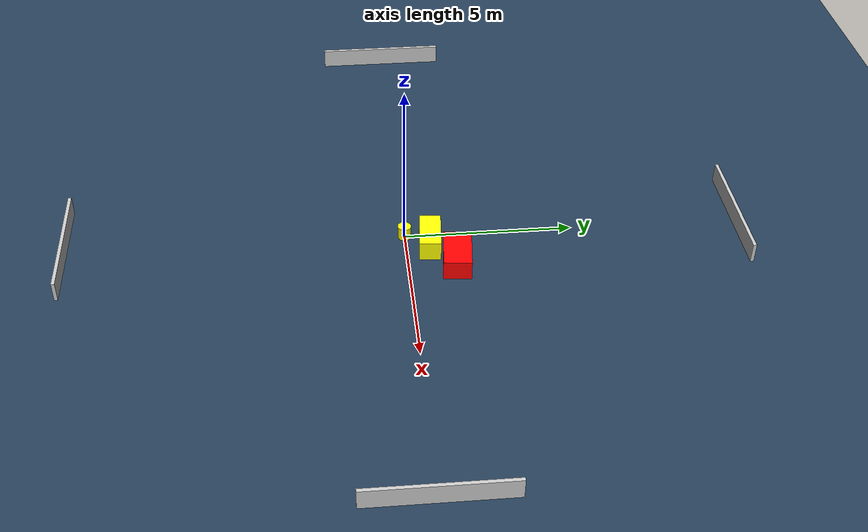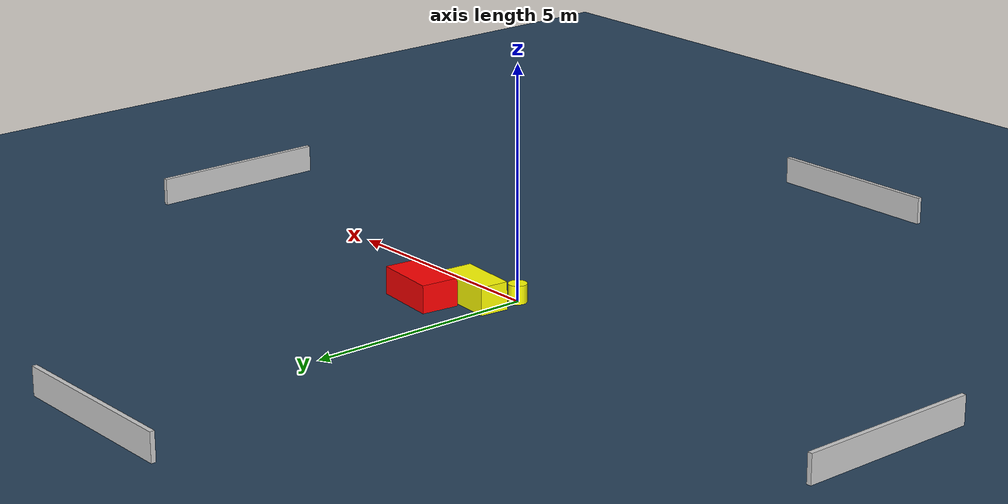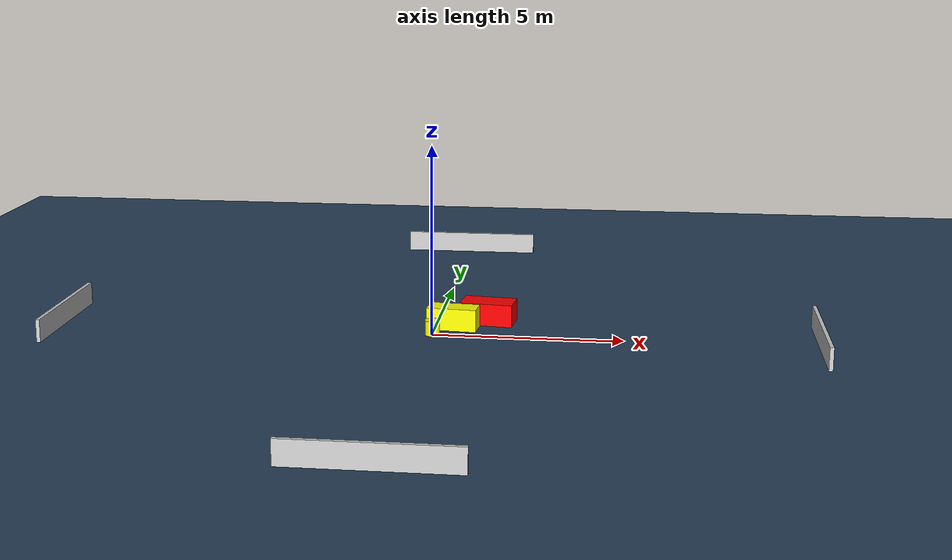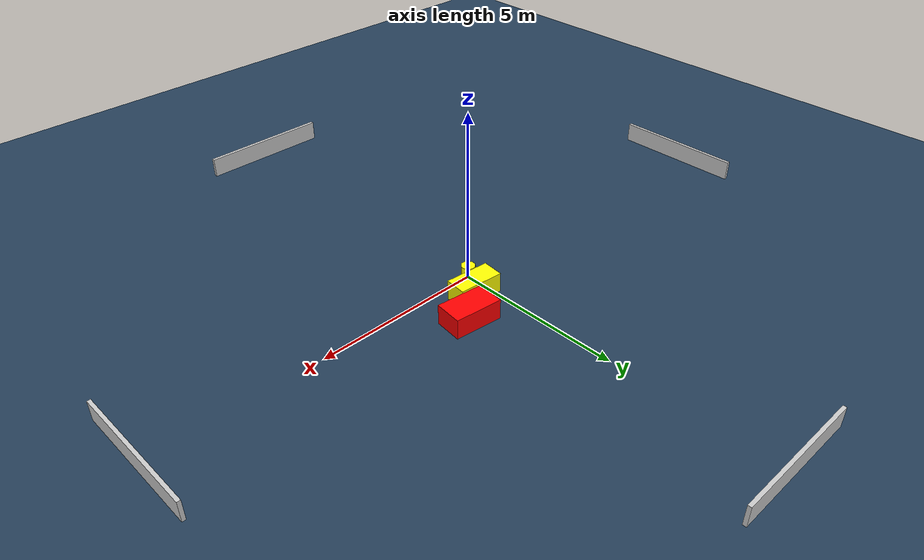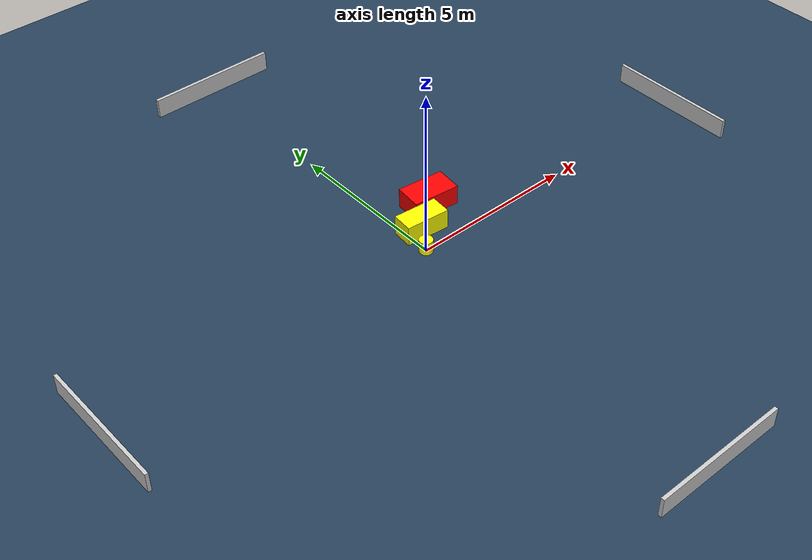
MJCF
<?xml version="1.0" ?>
<mujoco model="generated_environment">
  <option timestep="0.01" integrator="RK4" cone="elliptic"/>
  <default>
    <geom density="1"/>
  </default>
  <asset>
    <texture builtin="gradient" height="3072" name="skybox" rgb1="0.3 0.5 0.7" rgb2="0 0 0" type="skybox" width="512"/>
    <texture builtin="checker" height="300" name="groundplane" rgb1="0.2 0.3 0.4" rgb2="0.1 0.2 0.3" type="2d" width="300"/>
    <material name="groundplane" reflectance="0.2" texrepeat="5 5" texture="groundplane"/>
  </asset>
  <worldbody>
    <light dir="0 0 -1" directional="true" pos="0 0 1.5"/>
    <geom condim="3" friction="0.5 0.005 0.001" material="groundplane" name="floor" pos="0 0 0" size="0 0 0.05" type="plane"/>
    <body name="walls">
      <geom name="wall_1" condim="4" pos="-10.0 0.0 0.3" rgba="0.800000011920929 0.800000011920929 0.800000011920929 1.0" size="0.05 2.0 0.3" type="box"/>
      <geom name="wall_2" condim="4" pos="10.0 0.0 0.3" rgba="0.800000011920929 0.800000011920929 0.800000011920929 1.0" size="0.05 2.0 0.3" type="box"/>
      <geom name="wall_3" condim="4" pos="0.0 -10.0 0.3" rgba="0.800000011920929 0.800000011920929 0.800000011920929 1.0" size="2.0 0.05 0.3" type="box"/>
      <geom name="wall_4" condim="4" pos="0.0 10.0 0.3" rgba="0.800000011920929 0.800000011920929 0.800000011920929 1.0" size="2.0 0.05 0.3" type="box"/>
    </body>
    <body name="robot">
      <joint name="joint_x" type="slide" pos="0 0 0" axis="1 0 0"/>
      <joint name="joint_y" type="slide" pos="0 0 0" axis="0 1 0"/>
      <geom name="robot" type="cylinder" pos="0.0 0.0 0.2" size="0.2 0.2 0.0" mass="5.0" friction="1.0 0.005 0.0001" condim="4" rgba="1.0 1.0 0.0 1.0"/>
    </body>
    <body name="obstacle_1_movable">
      <geom name="obstacle_1_movable" condim="4" pos="0.47269607623790477 0.7184187131697021 0.3" euler="0 0 354.94560749464745" friction="0.0 0.005 0.001" rgba="1.0 1.0 0.0 1.0" size="0.6612212156154602 0.3161103062250732 0.3" type="box" mass="0.1"/>
      <joint type="free"/>
    </body>
    <body name="obstacle_2_static">
      <geom name="obstacle_2_static" condim="4" pos="1.3483361185214193 1.4263517012789357 0.3" euler="0 0 173.8316664261877" friction="0.0 0.005 0.001" rgba="1.0 0.0 0.0 1.0" size="0.7068720068504193 0.4108662253608184 0.3" type="box"/>
    </body>
  </worldbody>
  <actuator>
    <motor name="actuator_x" joint="joint_x" gear="1" ctrlrange="-1 1"/>
    <motor name="actuator_y" joint="joint_y" gear="1" ctrlrange="-1 1"/>
  </actuator>
</mujoco>
